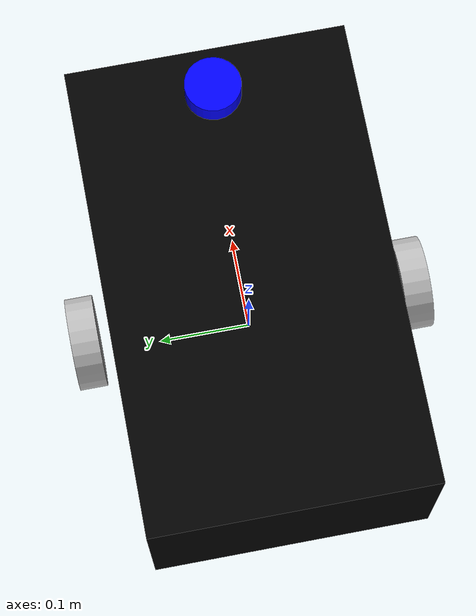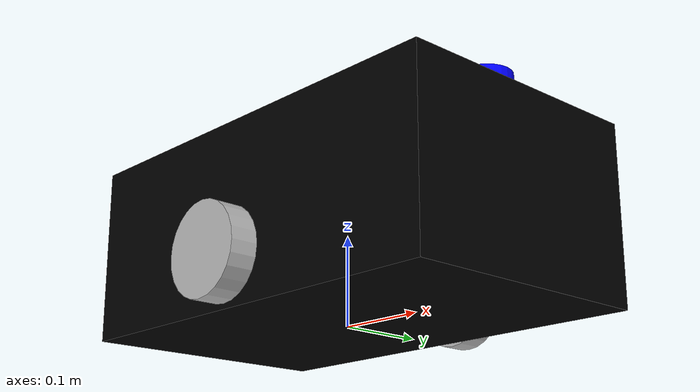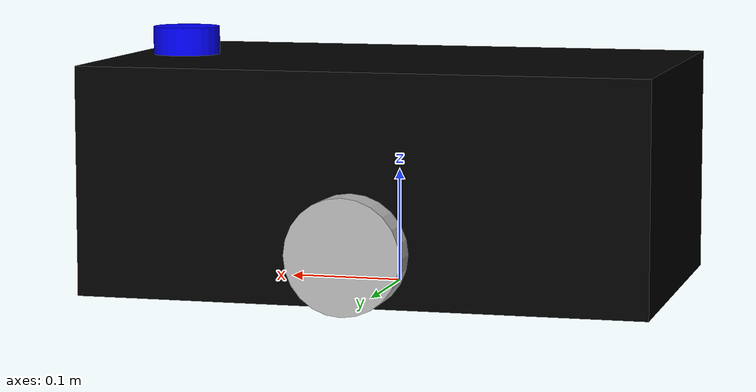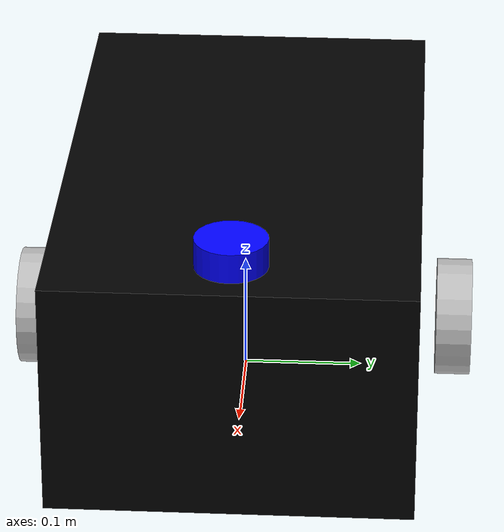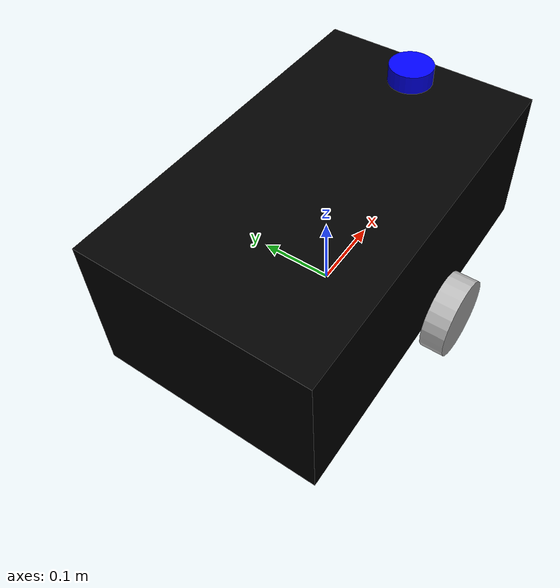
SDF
<?xml version="1.0" ?>
<sdf version="1.9">
  <model name="simple_lidar_bot">
    <static>false</static>

    <link name="base_link">
      <pose>0 0 0.1 0 0 0</pose>

      <inertial>
        <mass>5.0</mass>
        <inertia>
          <ixx>0.1</ixx>
          <iyy>0.1</iyy>
          <izz>0.1</izz>
          <ixy>0.0</ixy>
          <ixz>0.0</ixz>
          <iyz>0.0</iyz>
        </inertia>
      </inertial>

      <collision name="base_collision">
        <geometry>
          <box>
            <size>0.5 0.3 0.2</size>
          </box>
        </geometry>
      </collision>

      <visual name="base_visual">
        <geometry>
          <box>
            <size>0.5 0.3 0.2</size>
          </box>
        </geometry>
        <material>
          <ambient>0 0 0 1</ambient>
          <diffuse>0 0 0 1</diffuse>
        </material>
      </visual>
    </link>

    <link name="left_wheel">
      <pose>0 0.18 0.05 1.5708 0 0</pose>
      <inertial>
        <mass>0.5</mass>
        <inertia>
          <ixx>0.01</ixx>
          <iyy>0.01</iyy>
          <izz>0.01</izz>
          <ixy>0.0</ixy>
          <ixz>0.0</ixz>
          <iyz>0.0</iyz>
        </inertia>
      </inertial>
      <collision name="left_wheel_collision">
        <geometry>
          <cylinder>
            <radius>0.05</radius>
            <length>0.03</length>
          </cylinder>
        </geometry>
      </collision>
      <visual name="left_wheel_visual">
        <geometry>
          <cylinder>
            <radius>0.05</radius>
            <length>0.03</length>
          </cylinder>
        </geometry>
      </visual>
    </link>

    <link name="right_wheel">
      <pose>0 -0.18 0.05 1.5708 0 0</pose>
      <inertial>
        <mass>0.5</mass>
        <inertia>
          <ixx>0.01</ixx>
          <iyy>0.01</iyy>
          <izz>0.01</izz>
          <ixy>0.0</ixy>
          <ixz>0.0</ixz>
          <iyz>0.0</iyz>
        </inertia>
      </inertial>
      <collision name="right_wheel_collision">
        <geometry>
          <cylinder>
            <radius>0.05</radius>
            <length>0.03</length>
          </cylinder>
        </geometry>
      </collision>
      <visual name="right_wheel_visual">
        <geometry>
          <cylinder>
            <radius>0.05</radius>
            <length>0.03</length>
          </cylinder>
        </geometry>
      </visual>
    </link>

    <joint name="left_wheel_joint" type="revolute">
      <parent>base_link</parent>
      <child>left_wheel</child>
      <axis>
        <xyz>0 0 1</xyz>
      </axis>
    </joint>

    <joint name="right_wheel_joint" type="revolute">
      <parent>base_link</parent>
      <child>right_wheel</child>
      <axis>
        <xyz>0 0 1</xyz>
      </axis>
    </joint>

    <link name="lidar_link">
      <pose>0.2 0 0.2 0 0 0</pose>
      <inertial>
        <mass>0.1</mass>
        <inertia>
          <ixx>0.001</ixx>
          <iyy>0.001</iyy>
          <izz>0.001</izz>
          <ixy>0.0</ixy>
          <ixz>0.0</ixz>
          <iyz>0.0</iyz>
        </inertia>
      </inertial>

      <visual name="lidar_visual">
        <geometry>
          <cylinder>
            <radius>0.03</radius>
            <length>0.05</length>
          </cylinder>
        </geometry>
        <material>
          <ambient>0 0 1 1</ambient>
          <diffuse>0 0 1 1</diffuse>
        </material>
      </visual>

      <sensor name="gpu_lidar" type="gpu_lidar">
        <pose>0 0 0 1.5708 0 0</pose>
        <topic>/simple_lidar_bot/lidar</topic>
        <update_rate>10</update_rate>

        <lidar>
          <scan>
            <horizontal>
              <samples>640</samples>
              <resolution>1</resolution>
              <min_angle>-0.6981317</min_angle>
              <max_angle>0.6981317</max_angle>
            </horizontal>
            <vertical>
              <samples>1</samples>
              <resolution>1</resolution>
              <min_angle>0</min_angle>
              <max_angle>0</max_angle>
            </vertical>
          </scan>

          <range>
            <min>0.08</min>
            <max>10.0</max>
            <resolution>0.01</resolution>
          </range>
        </lidar>

        <always_on>true</always_on>
        <visualize>true</visualize>
      </sensor>
    </link>

    <joint name="lidar_joint" type="fixed">
      <parent>base_link</parent>
      <child>lidar_link</child>
    </joint>

    <plugin
      filename="gz-sim-diff-drive-system"
      name="gz::sim::systems::DiffDrive">
      <left_joint>left_wheel_joint</left_joint>
      <right_joint>right_wheel_joint</right_joint>
      <wheel_separation>0.36</wheel_separation>
      <wheel_radius>0.05</wheel_radius>
      <topic>cmd_vel</topic>
      <odom_topic>odom</odom_topic>
      <tf_topic>tf</tf_topic>
      <frame_id>odom</frame_id>
      <child_frame_id>base_link</child_frame_id>
    </plugin>

  </model>
</sdf>
